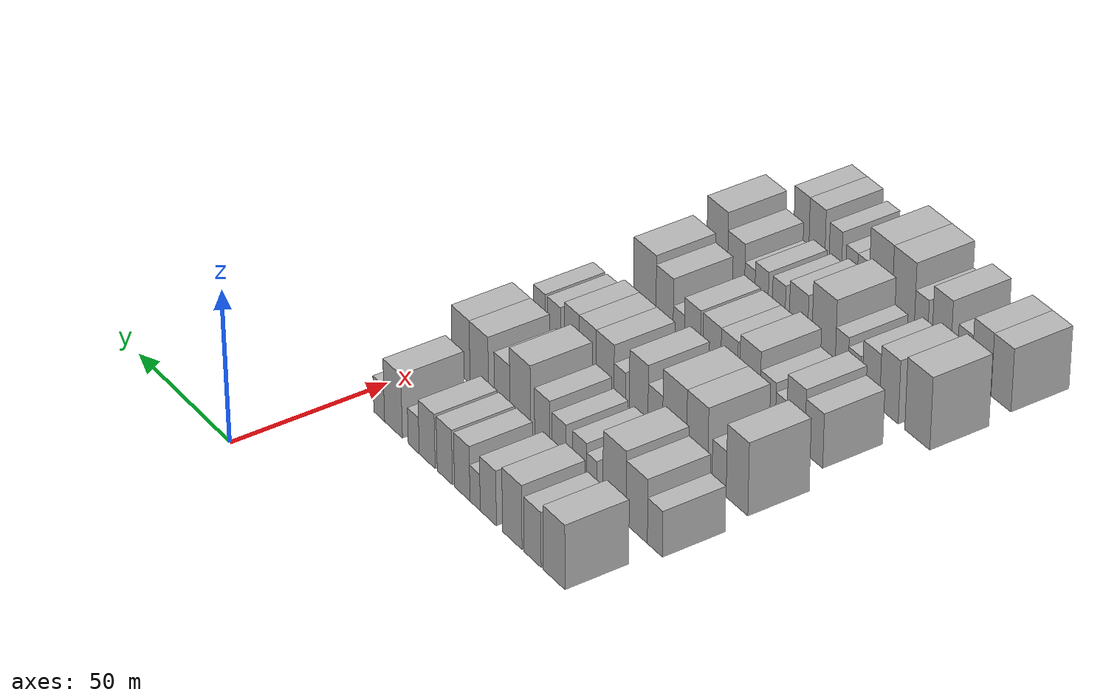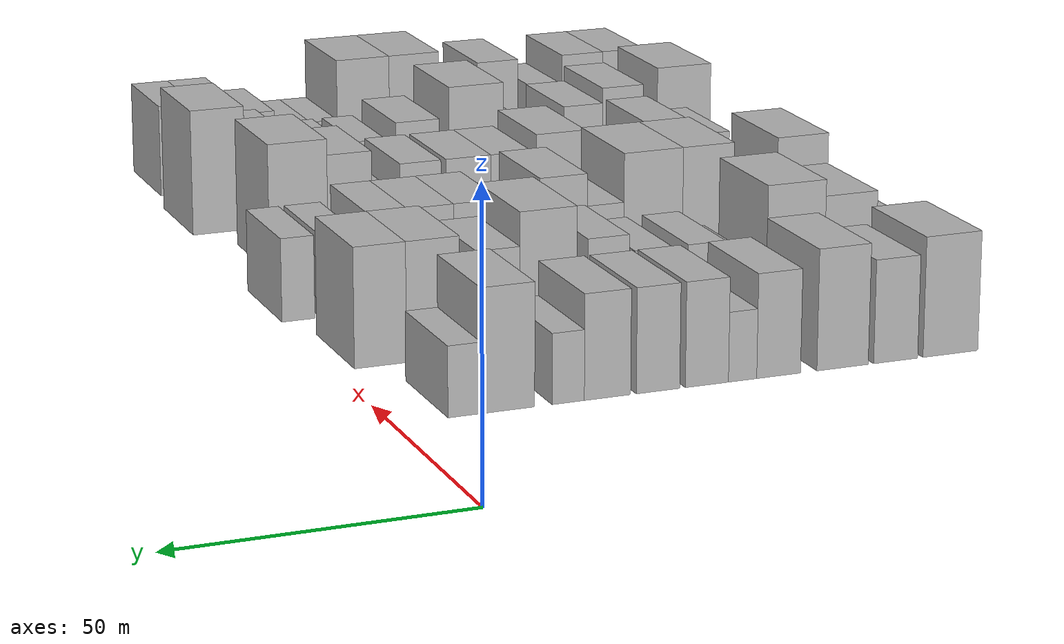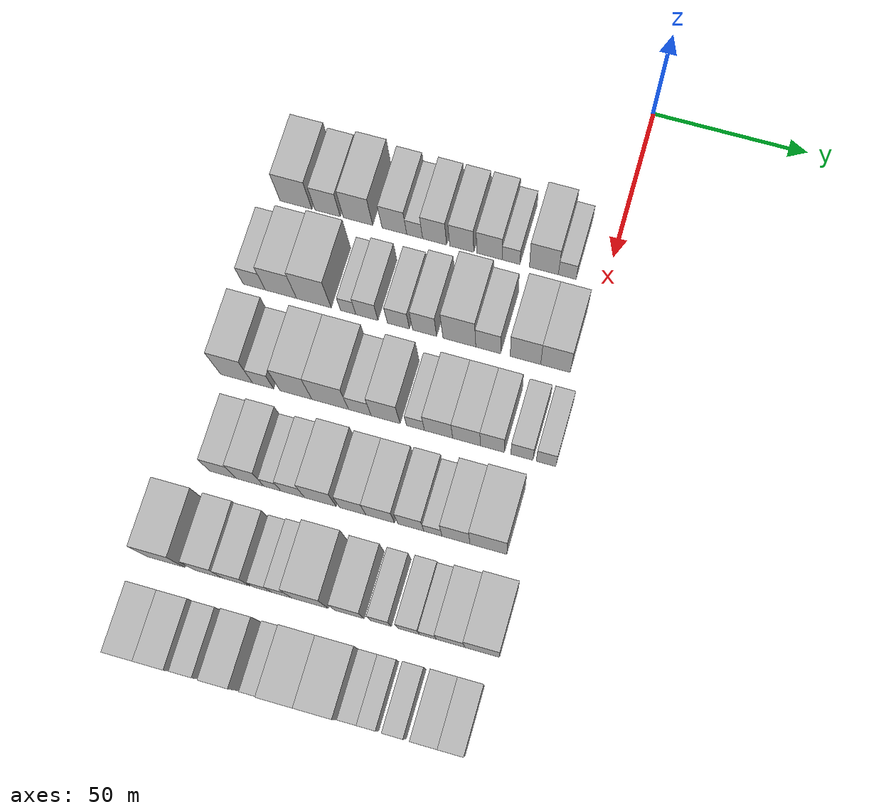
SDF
<sdf version="1.6">
 <world name="default">
  <model name="building_47">
   <static>1</static>
   <pose>50.0000 -99.3227 0 0.000000 0.000000 0.000000</pose>
   <link name="link">
    <pose>0 0 10.50 0 0 0</pose>
    <collision name="collision"><geometry><box><size>20.0000 10.3692 21.0000</size></box></geometry></collision>
    <visual name="visual">
     <cast_shadows>0</cast_shadows>
     <geometry><box><size>20.0000 10.3692 21.0000</size></box></geometry>
     <material>
      <script>
       <uri>model://HANNAS_wall/materials/scripts</uri>
       <uri>model://HANNAS_wall/materials/textures</uri>
       <name>vrc/HANNAS_wall</name>
      </script>
     </material>
    </visual>
   </link>
  </model>
  <model name="building_48">
   <static>1</static>
   <pose>50.0000 -89.0212 0 0.000000 0.000000 0.000000</pose>
   <link name="link">
    <pose>0 0 9.00 0 0 0</pose>
    <collision name="collision"><geometry><box><size>20.0000 8.2338 18.0000</size></box></geometry></collision>
    <visual name="visual">
     <cast_shadows>0</cast_shadows>
     <geometry><box><size>20.0000 8.2338 18.0000</size></box></geometry>
     <material>
      <script>
       <uri>model://HANNAS_wall/materials/scripts</uri>
       <uri>model://HANNAS_wall/materials/textures</uri>
       <name>vrc/HANNAS_wall</name>
      </script>
     </material>
    </visual>
   </link>
  </model>
  <model name="building_49">
   <static>1</static>
   <pose>50.0000 -79.1517 0 0.000000 0.000000 0.000000</pose>
   <link name="link">
    <pose>0 0 10.50 0 0 0</pose>
    <collision name="collision"><geometry><box><size>20.0000 9.5053 21.0000</size></box></geometry></collision>
    <visual name="visual">
     <cast_shadows>0</cast_shadows>
     <geometry><box><size>20.0000 9.5053 21.0000</size></box></geometry>
     <material>
      <script>
       <uri>model://HANNAS_wall/materials/scripts</uri>
       <uri>model://HANNAS_wall/materials/textures</uri>
       <name>vrc/HANNAS_wall</name>
      </script>
     </material>
    </visual>
   </link>
  </model>
  <model name="building_50">
   <static>1</static>
   <pose>50.0000 -67.4101 0 0.000000 0.000000 0.000000</pose>
   <link name="link">
    <pose>0 0 9.00 0 0 0</pose>
    <collision name="collision"><geometry><box><size>20.0000 7.9779 18.0000</size></box></geometry></collision>
    <visual name="visual">
     <cast_shadows>0</cast_shadows>
     <geometry><box><size>20.0000 7.9779 18.0000</size></box></geometry>
     <material>
      <script>
       <uri>model://HANNAS_wall/materials/scripts</uri>
       <uri>model://HANNAS_wall/materials/textures</uri>
       <name>vrc/HANNAS_wall</name>
      </script>
     </material>
    </visual>
   </link>
  </model>
  <model name="building_51">
   <static>1</static>
   <pose>50.0000 -60.8665 0 0.000000 0.000000 0.000000</pose>
   <link name="link">
    <pose>0 0 6.00 0 0 0</pose>
    <collision name="collision"><geometry><box><size>20.0000 5.1093 12.0000</size></box></geometry></collision>
    <visual name="visual">
     <cast_shadows>0</cast_shadows>
     <geometry><box><size>20.0000 5.1093 12.0000</size></box></geometry>
     <material>
      <script>
       <uri>model://HANNAS_wall/materials/scripts</uri>
       <uri>model://HANNAS_wall/materials/textures</uri>
       <name>vrc/HANNAS_wall</name>
      </script>
     </material>
    </visual>
   </link>
  </model>
  <model name="building_52">
   <static>1</static>
   <pose>50.0000 -54.4443 0 0.000000 0.000000 0.000000</pose>
   <link name="link">
    <pose>0 0 9.00 0 0 0</pose>
    <collision name="collision"><geometry><box><size>20.0000 7.7352 18.0000</size></box></geometry></collision>
    <visual name="visual">
     <cast_shadows>0</cast_shadows>
     <geometry><box><size>20.0000 7.7352 18.0000</size></box></geometry>
     <material>
      <script>
       <uri>model://HANNAS_wall/materials/scripts</uri>
       <uri>model://HANNAS_wall/materials/textures</uri>
       <name>vrc/HANNAS_wall</name>
      </script>
     </material>
    </visual>
   </link>
  </model>
  <model name="building_53">
   <static>1</static>
   <pose>50.0000 -45.7203 0 0.000000 0.000000 0.000000</pose>
   <link name="link">
    <pose>0 0 9.00 0 0 0</pose>
    <collision name="collision"><geometry><box><size>20.0000 7.7129 18.0000</size></box></geometry></collision>
    <visual name="visual">
     <cast_shadows>0</cast_shadows>
     <geometry><box><size>20.0000 7.7129 18.0000</size></box></geometry>
     <material>
      <script>
       <uri>model://HANNAS_wall/materials/scripts</uri>
       <uri>model://HANNAS_wall/materials/textures</uri>
       <name>vrc/HANNAS_wall</name>
      </script>
     </material>
    </visual>
   </link>
  </model>
  <model name="building_54">
   <static>1</static>
   <pose>50.0000 -36.8041 0 0.000000 0.000000 0.000000</pose>
   <link name="link">
    <pose>0 0 9.00 0 0 0</pose>
    <collision name="collision"><geometry><box><size>20.0000 8.1194 18.0000</size></box></geometry></collision>
    <visual name="visual">
     <cast_shadows>0</cast_shadows>
     <geometry><box><size>20.0000 8.1194 18.0000</size></box></geometry>
     <material>
      <script>
       <uri>model://HANNAS_wall/materials/scripts</uri>
       <uri>model://HANNAS_wall/materials/textures</uri>
       <name>vrc/HANNAS_wall</name>
      </script>
     </material>
    </visual>
   </link>
  </model>
  <model name="building_55">
   <static>1</static>
   <pose>50.0000 -29.9324 0 0.000000 0.000000 0.000000</pose>
   <link name="link">
    <pose>0 0 6.00 0 0 0</pose>
    <collision name="collision"><geometry><box><size>20.0000 5.6239 12.0000</size></box></geometry></collision>
    <visual name="visual">
     <cast_shadows>0</cast_shadows>
     <geometry><box><size>20.0000 5.6239 12.0000</size></box></geometry>
     <material>
      <script>
       <uri>model://HANNAS_wall/materials/scripts</uri>
       <uri>model://HANNAS_wall/materials/textures</uri>
       <name>vrc/HANNAS_wall</name>
      </script>
     </material>
    </visual>
   </link>
  </model>
  <model name="building_56">
   <static>1</static>
   <pose>50.0000 -19.5153 0 0.000000 0.000000 0.000000</pose>
   <link name="link">
    <pose>0 0 10.50 0 0 0</pose>
    <collision name="collision"><geometry><box><size>20.0000 9.2102 21.0000</size></box></geometry></collision>
    <visual name="visual">
     <cast_shadows>0</cast_shadows>
     <geometry><box><size>20.0000 9.2102 21.0000</size></box></geometry>
     <material>
      <script>
       <uri>model://HANNAS_wall/materials/scripts</uri>
       <uri>model://HANNAS_wall/materials/textures</uri>
       <name>vrc/HANNAS_wall</name>
      </script>
     </material>
    </visual>
   </link>
  </model>
  <model name="building_57">
   <static>1</static>
   <pose>50.0000 -12.0946 0 0.000000 0.000000 0.000000</pose>
   <link name="link">
    <pose>0 0 6.00 0 0 0</pose>
    <collision name="collision"><geometry><box><size>20.0000 5.6313 12.0000</size></box></geometry></collision>
    <visual name="visual">
     <cast_shadows>0</cast_shadows>
     <geometry><box><size>20.0000 5.6313 12.0000</size></box></geometry>
     <material>
      <script>
       <uri>model://HANNAS_wall/materials/scripts</uri>
       <uri>model://HANNAS_wall/materials/textures</uri>
       <name>vrc/HANNAS_wall</name>
      </script>
     </material>
    </visual>
   </link>
  </model>
  <model name="building_166">
   <static>1</static>
   <pose>79.0000 -103.4210 0 0.000000 0.000000 0.000000</pose>
   <link name="link">
    <pose>0 0 7.50 0 0 0</pose>
    <collision name="collision"><geometry><box><size>20.0000 7.1111 15.0000</size></box></geometry></collision>
    <visual name="visual">
     <cast_shadows>0</cast_shadows>
     <geometry><box><size>20.0000 7.1111 15.0000</size></box></geometry>
     <material>
      <script>
       <uri>model://HANNAS_wall/materials/scripts</uri>
       <uri>model://HANNAS_wall/materials/textures</uri>
       <name>vrc/HANNAS_wall</name>
      </script>
     </material>
    </visual>
   </link>
  </model>
  <model name="building_167">
   <static>1</static>
   <pose>79.0000 -94.8665 0 0.000000 0.000000 0.000000</pose>
   <link name="link">
    <pose>0 0 10.50 0 0 0</pose>
    <collision name="collision"><geometry><box><size>20.0000 9.9979 21.0000</size></box></geometry></collision>
    <visual name="visual">
     <cast_shadows>0</cast_shadows>
     <geometry><box><size>20.0000 9.9979 21.0000</size></box></geometry>
     <material>
      <script>
       <uri>model://HANNAS_wall/materials/scripts</uri>
       <uri>model://HANNAS_wall/materials/textures</uri>
       <name>vrc/HANNAS_wall</name>
      </script>
     </material>
    </visual>
   </link>
  </model>
  <model name="building_168">
   <static>1</static>
   <pose>79.0000 -84.3272 0 0.000000 0.000000 0.000000</pose>
   <link name="link">
    <pose>0 0 12.00 0 0 0</pose>
    <collision name="collision"><geometry><box><size>20.0000 11.0808 24.0000</size></box></geometry></collision>
    <visual name="visual">
     <cast_shadows>0</cast_shadows>
     <geometry><box><size>20.0000 11.0808 24.0000</size></box></geometry>
     <material>
      <script>
       <uri>model://HANNAS_wall/materials/scripts</uri>
       <uri>model://HANNAS_wall/materials/textures</uri>
       <name>vrc/HANNAS_wall</name>
      </script>
     </material>
    </visual>
   </link>
  </model>
  <model name="building_169">
   <static>1</static>
   <pose>79.0000 -73.3573 0 0.000000 0.000000 0.000000</pose>
   <link name="link">
    <pose>0 0 6.00 0 0 0</pose>
    <collision name="collision"><geometry><box><size>20.0000 4.8589 12.0000</size></box></geometry></collision>
    <visual name="visual">
     <cast_shadows>0</cast_shadows>
     <geometry><box><size>20.0000 4.8589 12.0000</size></box></geometry>
     <material>
      <script>
       <uri>model://HANNAS_wall/materials/scripts</uri>
       <uri>model://HANNAS_wall/materials/textures</uri>
       <name>vrc/HANNAS_wall</name>
      </script>
     </material>
    </visual>
   </link>
  </model>
  <model name="building_170">
   <static>1</static>
   <pose>79.0000 -67.4124 0 0.000000 0.000000 0.000000</pose>
   <link name="link">
    <pose>0 0 7.50 0 0 0</pose>
    <collision name="collision"><geometry><box><size>20.0000 7.0308 15.0000</size></box></geometry></collision>
    <visual name="visual">
     <cast_shadows>0</cast_shadows>
     <geometry><box><size>20.0000 7.0308 15.0000</size></box></geometry>
     <material>
      <script>
       <uri>model://HANNAS_wall/materials/scripts</uri>
       <uri>model://HANNAS_wall/materials/textures</uri>
       <name>vrc/HANNAS_wall</name>
      </script>
     </material>
    </visual>
   </link>
  </model>
  <model name="building_171">
   <static>1</static>
   <pose>79.0000 -57.4014 0 0.000000 0.000000 0.000000</pose>
   <link name="link">
    <pose>0 0 7.50 0 0 0</pose>
    <collision name="collision"><geometry><box><size>20.0000 6.9912 15.0000</size></box></geometry></collision>
    <visual name="visual">
     <cast_shadows>0</cast_shadows>
     <geometry><box><size>20.0000 6.9912 15.0000</size></box></geometry>
     <material>
      <script>
       <uri>model://HANNAS_wall/materials/scripts</uri>
       <uri>model://HANNAS_wall/materials/textures</uri>
       <name>vrc/HANNAS_wall</name>
      </script>
     </material>
    </visual>
   </link>
  </model>
  <model name="building_172">
   <static>1</static>
   <pose>79.0000 -49.1078 0 0.000000 0.000000 0.000000</pose>
   <link name="link">
    <pose>0 0 9.00 0 0 0</pose>
    <collision name="collision"><geometry><box><size>20.0000 7.5960 18.0000</size></box></geometry></collision>
    <visual name="visual">
     <cast_shadows>0</cast_shadows>
     <geometry><box><size>20.0000 7.5960 18.0000</size></box></geometry>
     <material>
      <script>
       <uri>model://HANNAS_wall/materials/scripts</uri>
       <uri>model://HANNAS_wall/materials/textures</uri>
       <name>vrc/HANNAS_wall</name>
      </script>
     </material>
    </visual>
   </link>
  </model>
  <model name="building_173">
   <static>1</static>
   <pose>79.0000 -38.1394 0 0.000000 0.000000 0.000000</pose>
   <link name="link">
    <pose>0 0 12.00 0 0 0</pose>
    <collision name="collision"><geometry><box><size>20.0000 10.3407 24.0000</size></box></geometry></collision>
    <visual name="visual">
     <cast_shadows>0</cast_shadows>
     <geometry><box><size>20.0000 10.3407 24.0000</size></box></geometry>
     <material>
      <script>
       <uri>model://HANNAS_wall/materials/scripts</uri>
       <uri>model://HANNAS_wall/materials/textures</uri>
       <name>vrc/HANNAS_wall</name>
      </script>
     </material>
    </visual>
   </link>
  </model>
  <model name="building_174">
   <static>1</static>
   <pose>79.0000 -29.0585 0 0.000000 0.000000 0.000000</pose>
   <link name="link">
    <pose>0 0 9.00 0 0 0</pose>
    <collision name="collision"><geometry><box><size>20.0000 7.8211 18.0000</size></box></geometry></collision>
    <visual name="visual">
     <cast_shadows>0</cast_shadows>
     <geometry><box><size>20.0000 7.8211 18.0000</size></box></geometry>
     <material>
      <script>
       <uri>model://HANNAS_wall/materials/scripts</uri>
       <uri>model://HANNAS_wall/materials/textures</uri>
       <name>vrc/HANNAS_wall</name>
      </script>
     </material>
    </visual>
   </link>
  </model>
  <model name="building_175">
   <static>1</static>
   <pose>79.0000 -17.3929 0 0.000000 0.000000 0.000000</pose>
   <link name="link">
    <pose>0 0 10.50 0 0 0</pose>
    <collision name="collision"><geometry><box><size>20.0000 9.5101 21.0000</size></box></geometry></collision>
    <visual name="visual">
     <cast_shadows>0</cast_shadows>
     <geometry><box><size>20.0000 9.5101 21.0000</size></box></geometry>
     <material>
      <script>
       <uri>model://HANNAS_wall/materials/scripts</uri>
       <uri>model://HANNAS_wall/materials/textures</uri>
       <name>vrc/HANNAS_wall</name>
      </script>
     </material>
    </visual>
   </link>
  </model>
  <model name="building_176">
   <static>1</static>
   <pose>79.0000 -8.0406 0 0.000000 0.000000 0.000000</pose>
   <link name="link">
    <pose>0 0 10.50 0 0 0</pose>
    <collision name="collision"><geometry><box><size>20.0000 9.1945 21.0000</size></box></geometry></collision>
    <visual name="visual">
     <cast_shadows>0</cast_shadows>
     <geometry><box><size>20.0000 9.1945 21.0000</size></box></geometry>
     <material>
      <script>
       <uri>model://HANNAS_wall/materials/scripts</uri>
       <uri>model://HANNAS_wall/materials/textures</uri>
       <name>vrc/HANNAS_wall</name>
      </script>
     </material>
    </visual>
   </link>
  </model>
  <model name="building_280">
   <static>1</static>
   <pose>108.0000 -99.5241 0 0.000000 0.000000 0.000000</pose>
   <link name="link">
    <pose>0 0 12.00 0 0 0</pose>
    <collision name="collision"><geometry><box><size>20.0000 10.1094 24.0000</size></box></geometry></collision>
    <visual name="visual">
     <cast_shadows>0</cast_shadows>
     <geometry><box><size>20.0000 10.1094 24.0000</size></box></geometry>
     <material>
      <script>
       <uri>model://HANNAS_wall/materials/scripts</uri>
       <uri>model://HANNAS_wall/materials/textures</uri>
       <name>vrc/HANNAS_wall</name>
      </script>
     </material>
    </visual>
   </link>
  </model>
  <model name="building_281">
   <static>1</static>
   <pose>108.0000 -91.1392 0 0.000000 0.000000 0.000000</pose>
   <link name="link">
    <pose>0 0 7.50 0 0 0</pose>
    <collision name="collision"><geometry><box><size>20.0000 6.6603 15.0000</size></box></geometry></collision>
    <visual name="visual">
     <cast_shadows>0</cast_shadows>
     <geometry><box><size>20.0000 6.6603 15.0000</size></box></geometry>
     <material>
      <script>
       <uri>model://HANNAS_wall/materials/scripts</uri>
       <uri>model://HANNAS_wall/materials/textures</uri>
       <name>vrc/HANNAS_wall</name>
      </script>
     </material>
    </visual>
   </link>
  </model>
  <model name="building_282">
   <static>1</static>
   <pose>108.0000 -80.7818 0 0.000000 0.000000 0.000000</pose>
   <link name="link">
    <pose>0 0 12.00 0 0 0</pose>
    <collision name="collision"><geometry><box><size>20.0000 10.0544 24.0000</size></box></geometry></collision>
    <visual name="visual">
     <cast_shadows>0</cast_shadows>
     <geometry><box><size>20.0000 10.0544 24.0000</size></box></geometry>
     <material>
      <script>
       <uri>model://HANNAS_wall/materials/scripts</uri>
       <uri>model://HANNAS_wall/materials/textures</uri>
       <name>vrc/HANNAS_wall</name>
      </script>
     </material>
    </visual>
   </link>
  </model>
  <model name="building_283">
   <static>1</static>
   <pose>108.0000 -70.0143 0 0.000000 0.000000 0.000000</pose>
   <link name="link">
    <pose>0 0 12.00 0 0 0</pose>
    <collision name="collision"><geometry><box><size>20.0000 11.4806 24.0000</size></box></geometry></collision>
    <visual name="visual">
     <cast_shadows>0</cast_shadows>
     <geometry><box><size>20.0000 11.4806 24.0000</size></box></geometry>
     <material>
      <script>
       <uri>model://HANNAS_wall/materials/scripts</uri>
       <uri>model://HANNAS_wall/materials/textures</uri>
       <name>vrc/HANNAS_wall</name>
      </script>
     </material>
    </visual>
   </link>
  </model>
  <model name="building_284">
   <static>1</static>
   <pose>108.0000 -60.7300 0 0.000000 0.000000 0.000000</pose>
   <link name="link">
    <pose>0 0 7.50 0 0 0</pose>
    <collision name="collision"><geometry><box><size>20.0000 7.0880 15.0000</size></box></geometry></collision>
    <visual name="visual">
     <cast_shadows>0</cast_shadows>
     <geometry><box><size>20.0000 7.0880 15.0000</size></box></geometry>
     <material>
      <script>
       <uri>model://HANNAS_wall/materials/scripts</uri>
       <uri>model://HANNAS_wall/materials/textures</uri>
       <name>vrc/HANNAS_wall</name>
      </script>
     </material>
    </visual>
   </link>
  </model>
  <model name="building_285">
   <static>1</static>
   <pose>108.0000 -52.6762 0 0.000000 0.000000 0.000000</pose>
   <link name="link">
    <pose>0 0 10.50 0 0 0</pose>
    <collision name="collision"><geometry><box><size>20.0000 9.0196 21.0000</size></box></geometry></collision>
    <visual name="visual">
     <cast_shadows>0</cast_shadows>
     <geometry><box><size>20.0000 9.0196 21.0000</size></box></geometry>
     <material>
      <script>
       <uri>model://HANNAS_wall/materials/scripts</uri>
       <uri>model://HANNAS_wall/materials/textures</uri>
       <name>vrc/HANNAS_wall</name>
      </script>
     </material>
    </visual>
   </link>
  </model>
  <model name="building_286">
   <static>1</static>
   <pose>108.0000 -43.3907 0 0.000000 0.000000 0.000000</pose>
   <link name="link">
    <pose>0 0 6.00 0 0 0</pose>
    <collision name="collision"><geometry><box><size>20.0000 5.5515 12.0000</size></box></geometry></collision>
    <visual name="visual">
     <cast_shadows>0</cast_shadows>
     <geometry><box><size>20.0000 5.5515 12.0000</size></box></geometry>
     <material>
      <script>
       <uri>model://HANNAS_wall/materials/scripts</uri>
       <uri>model://HANNAS_wall/materials/textures</uri>
       <name>vrc/HANNAS_wall</name>
      </script>
     </material>
    </visual>
   </link>
  </model>
  <model name="building_287">
   <static>1</static>
   <pose>108.0000 -36.2427 0 0.000000 0.000000 0.000000</pose>
   <link name="link">
    <pose>0 0 9.00 0 0 0</pose>
    <collision name="collision"><geometry><box><size>20.0000 8.7445 18.0000</size></box></geometry></collision>
    <visual name="visual">
     <cast_shadows>0</cast_shadows>
     <geometry><box><size>20.0000 8.7445 18.0000</size></box></geometry>
     <material>
      <script>
       <uri>model://HANNAS_wall/materials/scripts</uri>
       <uri>model://HANNAS_wall/materials/textures</uri>
       <name>vrc/HANNAS_wall</name>
      </script>
     </material>
    </visual>
   </link>
  </model>
  <model name="building_288">
   <static>1</static>
   <pose>108.0000 -27.5734 0 0.000000 0.000000 0.000000</pose>
   <link name="link">
    <pose>0 0 9.00 0 0 0</pose>
    <collision name="collision"><geometry><box><size>20.0000 8.5943 18.0000</size></box></geometry></collision>
    <visual name="visual">
     <cast_shadows>0</cast_shadows>
     <geometry><box><size>20.0000 8.5943 18.0000</size></box></geometry>
     <material>
      <script>
       <uri>model://HANNAS_wall/materials/scripts</uri>
       <uri>model://HANNAS_wall/materials/textures</uri>
       <name>vrc/HANNAS_wall</name>
      </script>
     </material>
    </visual>
   </link>
  </model>
  <model name="building_289">
   <static>1</static>
   <pose>108.0000 -19.5694 0 0.000000 0.000000 0.000000</pose>
   <link name="link">
    <pose>0 0 9.00 0 0 0</pose>
    <collision name="collision"><geometry><box><size>20.0000 7.4137 18.0000</size></box></geometry></collision>
    <visual name="visual">
     <cast_shadows>0</cast_shadows>
     <geometry><box><size>20.0000 7.4137 18.0000</size></box></geometry>
     <material>
      <script>
       <uri>model://HANNAS_wall/materials/scripts</uri>
       <uri>model://HANNAS_wall/materials/textures</uri>
       <name>vrc/HANNAS_wall</name>
      </script>
     </material>
    </visual>
   </link>
  </model>
  <model name="building_290">
   <static>1</static>
   <pose>108.0000 -10.4849 0 0.000000 0.000000 0.000000</pose>
   <link name="link">
    <pose>0 0 7.50 0 0 0</pose>
    <collision name="collision"><geometry><box><size>20.0000 6.7554 15.0000</size></box></geometry></collision>
    <visual name="visual">
     <cast_shadows>0</cast_shadows>
     <geometry><box><size>20.0000 6.7554 15.0000</size></box></geometry>
     <material>
      <script>
       <uri>model://HANNAS_wall/materials/scripts</uri>
       <uri>model://HANNAS_wall/materials/textures</uri>
       <name>vrc/HANNAS_wall</name>
      </script>
     </material>
    </visual>
   </link>
  </model>
  <model name="building_291">
   <static>1</static>
   <pose>108.0000 -3.1051 0 0.000000 0.000000 0.000000</pose>
   <link name="link">
    <pose>0 0 7.50 0 0 0</pose>
    <collision name="collision"><geometry><box><size>20.0000 6.0041 15.0000</size></box></geometry></collision>
    <visual name="visual">
     <cast_shadows>0</cast_shadows>
     <geometry><box><size>20.0000 6.0041 15.0000</size></box></geometry>
     <material>
      <script>
       <uri>model://HANNAS_wall/materials/scripts</uri>
       <uri>model://HANNAS_wall/materials/textures</uri>
       <name>vrc/HANNAS_wall</name>
      </script>
     </material>
    </visual>
   </link>
  </model>
  <model name="building_385">
   <static>1</static>
   <pose>137.0000 -94.0505 0 0.000000 0.000000 0.000000</pose>
   <link name="link">
    <pose>0 0 9.00 0 0 0</pose>
    <collision name="collision"><geometry><box><size>20.0000 8.3299 18.0000</size></box></geometry></collision>
    <visual name="visual">
     <cast_shadows>0</cast_shadows>
     <geometry><box><size>20.0000 8.3299 18.0000</size></box></geometry>
     <material>
      <script>
       <uri>model://HANNAS_wall/materials/scripts</uri>
       <uri>model://HANNAS_wall/materials/textures</uri>
       <name>vrc/HANNAS_wall</name>
      </script>
     </material>
    </visual>
   </link>
  </model>
  <model name="building_386">
   <static>1</static>
   <pose>137.0000 -85.6207 0 0.000000 0.000000 0.000000</pose>
   <link name="link">
    <pose>0 0 10.50 0 0 0</pose>
    <collision name="collision"><geometry><box><size>20.0000 8.5295 21.0000</size></box></geometry></collision>
    <visual name="visual">
     <cast_shadows>0</cast_shadows>
     <geometry><box><size>20.0000 8.5295 21.0000</size></box></geometry>
     <material>
      <script>
       <uri>model://HANNAS_wall/materials/scripts</uri>
       <uri>model://HANNAS_wall/materials/textures</uri>
       <name>vrc/HANNAS_wall</name>
      </script>
     </material>
    </visual>
   </link>
  </model>
  <model name="building_387">
   <static>1</static>
   <pose>137.0000 -78.7461 0 0.000000 0.000000 0.000000</pose>
   <link name="link">
    <pose>0 0 6.00 0 0 0</pose>
    <collision name="collision"><geometry><box><size>20.0000 5.2198 12.0000</size></box></geometry></collision>
    <visual name="visual">
     <cast_shadows>0</cast_shadows>
     <geometry><box><size>20.0000 5.2198 12.0000</size></box></geometry>
     <material>
      <script>
       <uri>model://HANNAS_wall/materials/scripts</uri>
       <uri>model://HANNAS_wall/materials/textures</uri>
       <name>vrc/HANNAS_wall</name>
      </script>
     </material>
    </visual>
   </link>
  </model>
  <model name="building_388">
   <static>1</static>
   <pose>137.0000 -72.4797 0 0.000000 0.000000 0.000000</pose>
   <link name="link">
    <pose>0 0 7.50 0 0 0</pose>
    <collision name="collision"><geometry><box><size>20.0000 7.3129 15.0000</size></box></geometry></collision>
    <visual name="visual">
     <cast_shadows>0</cast_shadows>
     <geometry><box><size>20.0000 7.3129 15.0000</size></box></geometry>
     <material>
      <script>
       <uri>model://HANNAS_wall/materials/scripts</uri>
       <uri>model://HANNAS_wall/materials/textures</uri>
       <name>vrc/HANNAS_wall</name>
      </script>
     </material>
    </visual>
   </link>
  </model>
  <model name="building_389">
   <static>1</static>
   <pose>137.0000 -63.9257 0 0.000000 0.000000 0.000000</pose>
   <link name="link">
    <pose>0 0 10.50 0 0 0</pose>
    <collision name="collision"><geometry><box><size>20.0000 9.7951 21.0000</size></box></geometry></collision>
    <visual name="visual">
     <cast_shadows>0</cast_shadows>
     <geometry><box><size>20.0000 9.7951 21.0000</size></box></geometry>
     <material>
      <script>
       <uri>model://HANNAS_wall/materials/scripts</uri>
       <uri>model://HANNAS_wall/materials/textures</uri>
       <name>vrc/HANNAS_wall</name>
      </script>
     </material>
    </visual>
   </link>
  </model>
  <model name="building_390">
   <static>1</static>
   <pose>137.0000 -54.0075 0 0.000000 0.000000 0.000000</pose>
   <link name="link">
    <pose>0 0 9.00 0 0 0</pose>
    <collision name="collision"><geometry><box><size>20.0000 8.0414 18.0000</size></box></geometry></collision>
    <visual name="visual">
     <cast_shadows>0</cast_shadows>
     <geometry><box><size>20.0000 8.0414 18.0000</size></box></geometry>
     <material>
      <script>
       <uri>model://HANNAS_wall/materials/scripts</uri>
       <uri>model://HANNAS_wall/materials/textures</uri>
       <name>vrc/HANNAS_wall</name>
      </script>
     </material>
    </visual>
   </link>
  </model>
  <model name="building_391">
   <static>1</static>
   <pose>137.0000 -45.5736 0 0.000000 0.000000 0.000000</pose>
   <link name="link">
    <pose>0 0 9.00 0 0 0</pose>
    <collision name="collision"><geometry><box><size>20.0000 8.8263 18.0000</size></box></geometry></collision>
    <visual name="visual">
     <cast_shadows>0</cast_shadows>
     <geometry><box><size>20.0000 8.8263 18.0000</size></box></geometry>
     <material>
      <script>
       <uri>model://HANNAS_wall/materials/scripts</uri>
       <uri>model://HANNAS_wall/materials/textures</uri>
       <name>vrc/HANNAS_wall</name>
      </script>
     </material>
    </visual>
   </link>
  </model>
  <model name="building_392">
   <static>1</static>
   <pose>137.0000 -36.1922 0 0.000000 0.000000 0.000000</pose>
   <link name="link">
    <pose>0 0 9.00 0 0 0</pose>
    <collision name="collision"><geometry><box><size>20.0000 7.9364 18.0000</size></box></geometry></collision>
    <visual name="visual">
     <cast_shadows>0</cast_shadows>
     <geometry><box><size>20.0000 7.9364 18.0000</size></box></geometry>
     <material>
      <script>
       <uri>model://HANNAS_wall/materials/scripts</uri>
       <uri>model://HANNAS_wall/materials/textures</uri>
       <name>vrc/HANNAS_wall</name>
      </script>
     </material>
    </visual>
   </link>
  </model>
  <model name="building_393">
   <static>1</static>
   <pose>137.0000 -29.4677 0 0.000000 0.000000 0.000000</pose>
   <link name="link">
    <pose>0 0 6.00 0 0 0</pose>
    <collision name="collision"><geometry><box><size>20.0000 5.5125 12.0000</size></box></geometry></collision>
    <visual name="visual">
     <cast_shadows>0</cast_shadows>
     <geometry><box><size>20.0000 5.5125 12.0000</size></box></geometry>
     <material>
      <script>
       <uri>model://HANNAS_wall/materials/scripts</uri>
       <uri>model://HANNAS_wall/materials/textures</uri>
       <name>vrc/HANNAS_wall</name>
      </script>
     </material>
    </visual>
   </link>
  </model>
  <model name="building_394">
   <static>1</static>
   <pose>137.0000 -22.4636 0 0.000000 0.000000 0.000000</pose>
   <link name="link">
    <pose>0 0 10.50 0 0 0</pose>
    <collision name="collision"><geometry><box><size>20.0000 8.4958 21.0000</size></box></geometry></collision>
    <visual name="visual">
     <cast_shadows>0</cast_shadows>
     <geometry><box><size>20.0000 8.4958 21.0000</size></box></geometry>
     <material>
      <script>
       <uri>model://HANNAS_wall/materials/scripts</uri>
       <uri>model://HANNAS_wall/materials/textures</uri>
       <name>vrc/HANNAS_wall</name>
      </script>
     </material>
    </visual>
   </link>
  </model>
  <model name="building_395">
   <static>1</static>
   <pose>137.0000 -12.6333 0 0.000000 0.000000 0.000000</pose>
   <link name="link">
    <pose>0 0 12.00 0 0 0</pose>
    <collision name="collision"><geometry><box><size>20.0000 11.1649 24.0000</size></box></geometry></collision>
    <visual name="visual">
     <cast_shadows>0</cast_shadows>
     <geometry><box><size>20.0000 11.1649 24.0000</size></box></geometry>
     <material>
      <script>
       <uri>model://HANNAS_wall/materials/scripts</uri>
       <uri>model://HANNAS_wall/materials/textures</uri>
       <name>vrc/HANNAS_wall</name>
      </script>
     </material>
    </visual>
   </link>
  </model>
  <model name="building_498">
   <static>1</static>
   <pose>166.0000 -101.7461 0 0.000000 0.000000 0.000000</pose>
   <link name="link">
    <pose>0 0 12.00 0 0 0</pose>
    <collision name="collision"><geometry><box><size>20.0000 11.4074 24.0000</size></box></geometry></collision>
    <visual name="visual">
     <cast_shadows>0</cast_shadows>
     <geometry><box><size>20.0000 11.4074 24.0000</size></box></geometry>
     <material>
      <script>
       <uri>model://HANNAS_wall/materials/scripts</uri>
       <uri>model://HANNAS_wall/materials/textures</uri>
       <name>vrc/HANNAS_wall</name>
      </script>
     </material>
    </visual>
   </link>
  </model>
  <model name="building_499">
   <static>1</static>
   <pose>166.0000 -88.7219 0 0.000000 0.000000 0.000000</pose>
   <link name="link">
    <pose>0 0 10.50 0 0 0</pose>
    <collision name="collision"><geometry><box><size>20.0000 8.6411 21.0000</size></box></geometry></collision>
    <visual name="visual">
     <cast_shadows>0</cast_shadows>
     <geometry><box><size>20.0000 8.6411 21.0000</size></box></geometry>
     <material>
      <script>
       <uri>model://HANNAS_wall/materials/scripts</uri>
       <uri>model://HANNAS_wall/materials/textures</uri>
       <name>vrc/HANNAS_wall</name>
      </script>
     </material>
    </visual>
   </link>
  </model>
  <model name="building_500">
   <static>1</static>
   <pose>166.0000 -80.3127 0 0.000000 0.000000 0.000000</pose>
   <link name="link">
    <pose>0 0 9.00 0 0 0</pose>
    <collision name="collision"><geometry><box><size>20.0000 8.1773 18.0000</size></box></geometry></collision>
    <visual name="visual">
     <cast_shadows>0</cast_shadows>
     <geometry><box><size>20.0000 8.1773 18.0000</size></box></geometry>
     <material>
      <script>
       <uri>model://HANNAS_wall/materials/scripts</uri>
       <uri>model://HANNAS_wall/materials/textures</uri>
       <name>vrc/HANNAS_wall</name>
      </script>
     </material>
    </visual>
   </link>
  </model>
  <model name="building_501">
   <static>1</static>
   <pose>166.0000 -72.4157 0 0.000000 0.000000 0.000000</pose>
   <link name="link">
    <pose>0 0 6.00 0 0 0</pose>
    <collision name="collision"><geometry><box><size>20.0000 5.6166 12.0000</size></box></geometry></collision>
    <visual name="visual">
     <cast_shadows>0</cast_shadows>
     <geometry><box><size>20.0000 5.6166 12.0000</size></box></geometry>
     <material>
      <script>
       <uri>model://HANNAS_wall/materials/scripts</uri>
       <uri>model://HANNAS_wall/materials/textures</uri>
       <name>vrc/HANNAS_wall</name>
      </script>
     </material>
    </visual>
   </link>
  </model>
  <model name="building_502">
   <static>1</static>
   <pose>166.0000 -66.5987 0 0.000000 0.000000 0.000000</pose>
   <link name="link">
    <pose>0 0 7.50 0 0 0</pose>
    <collision name="collision"><geometry><box><size>20.0000 6.0174 15.0000</size></box></geometry></collision>
    <visual name="visual">
     <cast_shadows>0</cast_shadows>
     <geometry><box><size>20.0000 6.0174 15.0000</size></box></geometry>
     <material>
      <script>
       <uri>model://HANNAS_wall/materials/scripts</uri>
       <uri>model://HANNAS_wall/materials/textures</uri>
       <name>vrc/HANNAS_wall</name>
      </script>
     </material>
    </visual>
   </link>
  </model>
  <model name="building_503">
   <static>1</static>
   <pose>166.0000 -58.0297 0 0.000000 0.000000 0.000000</pose>
   <link name="link">
    <pose>0 0 12.00 0 0 0</pose>
    <collision name="collision"><geometry><box><size>20.0000 11.1207 24.0000</size></box></geometry></collision>
    <visual name="visual">
     <cast_shadows>0</cast_shadows>
     <geometry><box><size>20.0000 11.1207 24.0000</size></box></geometry>
     <material>
      <script>
       <uri>model://HANNAS_wall/materials/scripts</uri>
       <uri>model://HANNAS_wall/materials/textures</uri>
       <name>vrc/HANNAS_wall</name>
      </script>
     </material>
    </visual>
   </link>
  </model>
  <model name="building_504">
   <static>1</static>
   <pose>166.0000 -46.0447 0 0.000000 0.000000 0.000000</pose>
   <link name="link">
    <pose>0 0 9.00 0 0 0</pose>
    <collision name="collision"><geometry><box><size>20.0000 8.8492 18.0000</size></box></geometry></collision>
    <visual name="visual">
     <cast_shadows>0</cast_shadows>
     <geometry><box><size>20.0000 8.8492 18.0000</size></box></geometry>
     <material>
      <script>
       <uri>model://HANNAS_wall/materials/scripts</uri>
       <uri>model://HANNAS_wall/materials/textures</uri>
       <name>vrc/HANNAS_wall</name>
      </script>
     </material>
    </visual>
   </link>
  </model>
  <model name="building_505">
   <static>1</static>
   <pose>166.0000 -36.5275 0 0.000000 0.000000 0.000000</pose>
   <link name="link">
    <pose>0 0 7.50 0 0 0</pose>
    <collision name="collision"><geometry><box><size>20.0000 6.1852 15.0000</size></box></geometry></collision>
    <visual name="visual">
     <cast_shadows>0</cast_shadows>
     <geometry><box><size>20.0000 6.1852 15.0000</size></box></geometry>
     <material>
      <script>
       <uri>model://HANNAS_wall/materials/scripts</uri>
       <uri>model://HANNAS_wall/materials/textures</uri>
       <name>vrc/HANNAS_wall</name>
      </script>
     </material>
    </visual>
   </link>
  </model>
  <model name="building_506">
   <static>1</static>
   <pose>166.0000 -28.1937 0 0.000000 0.000000 0.000000</pose>
   <link name="link">
    <pose>0 0 7.50 0 0 0</pose>
    <collision name="collision"><geometry><box><size>20.0000 6.4823 15.0000</size></box></geometry></collision>
    <visual name="visual">
     <cast_shadows>0</cast_shadows>
     <geometry><box><size>20.0000 6.4823 15.0000</size></box></geometry>
     <material>
      <script>
       <uri>model://HANNAS_wall/materials/scripts</uri>
       <uri>model://HANNAS_wall/materials/textures</uri>
       <name>vrc/HANNAS_wall</name>
      </script>
     </material>
    </visual>
   </link>
  </model>
  <model name="building_507">
   <static>1</static>
   <pose>166.0000 -22.4233 0 0.000000 0.000000 0.000000</pose>
   <link name="link">
    <pose>0 0 6.00 0 0 0</pose>
    <collision name="collision"><geometry><box><size>20.0000 5.0584 12.0000</size></box></geometry></collision>
    <visual name="visual">
     <cast_shadows>0</cast_shadows>
     <geometry><box><size>20.0000 5.0584 12.0000</size></box></geometry>
     <material>
      <script>
       <uri>model://HANNAS_wall/materials/scripts</uri>
       <uri>model://HANNAS_wall/materials/textures</uri>
       <name>vrc/HANNAS_wall</name>
      </script>
     </material>
    </visual>
   </link>
  </model>
  <model name="building_508">
   <static>1</static>
   <pose>166.0000 -15.6876 0 0.000000 0.000000 0.000000</pose>
   <link name="link">
    <pose>0 0 9.00 0 0 0</pose>
    <collision name="collision"><geometry><box><size>20.0000 8.4130 18.0000</size></box></geometry></collision>
    <visual name="visual">
     <cast_shadows>0</cast_shadows>
     <geometry><box><size>20.0000 8.4130 18.0000</size></box></geometry>
     <material>
      <script>
       <uri>model://HANNAS_wall/materials/scripts</uri>
       <uri>model://HANNAS_wall/materials/textures</uri>
       <name>vrc/HANNAS_wall</name>
      </script>
     </material>
    </visual>
   </link>
  </model>
  <model name="building_509">
   <static>1</static>
   <pose>166.0000 -6.2914 0 0.000000 0.000000 0.000000</pose>
   <link name="link">
    <pose>0 0 12.00 0 0 0</pose>
    <collision name="collision"><geometry><box><size>20.0000 10.3795 24.0000</size></box></geometry></collision>
    <visual name="visual">
     <cast_shadows>0</cast_shadows>
     <geometry><box><size>20.0000 10.3795 24.0000</size></box></geometry>
     <material>
      <script>
       <uri>model://HANNAS_wall/materials/scripts</uri>
       <uri>model://HANNAS_wall/materials/textures</uri>
       <name>vrc/HANNAS_wall</name>
      </script>
     </material>
    </visual>
   </link>
  </model>
  <model name="building_615">
   <static>1</static>
   <pose>195.0000 -101.0500 0 0.000000 0.000000 0.000000</pose>
   <link name="link">
    <pose>0 0 10.50 0 0 0</pose>
    <collision name="collision"><geometry><box><size>20.0000 8.9696 21.0000</size></box></geometry></collision>
    <visual name="visual">
     <cast_shadows>0</cast_shadows>
     <geometry><box><size>20.0000 8.9696 21.0000</size></box></geometry>
     <material>
      <script>
       <uri>model://HANNAS_wall/materials/scripts</uri>
       <uri>model://HANNAS_wall/materials/textures</uri>
       <name>vrc/HANNAS_wall</name>
      </script>
     </material>
    </visual>
   </link>
  </model>
  <model name="building_616">
   <static>1</static>
   <pose>195.0000 -92.1058 0 0.000000 0.000000 0.000000</pose>
   <link name="link">
    <pose>0 0 10.50 0 0 0</pose>
    <collision name="collision"><geometry><box><size>20.0000 8.9187 21.0000</size></box></geometry></collision>
    <visual name="visual">
     <cast_shadows>0</cast_shadows>
     <geometry><box><size>20.0000 8.9187 21.0000</size></box></geometry>
     <material>
      <script>
       <uri>model://HANNAS_wall/materials/scripts</uri>
       <uri>model://HANNAS_wall/materials/textures</uri>
       <name>vrc/HANNAS_wall</name>
      </script>
     </material>
    </visual>
   </link>
  </model>
  <model name="building_617">
   <static>1</static>
   <pose>195.0000 -84.3139 0 0.000000 0.000000 0.000000</pose>
   <link name="link">
    <pose>0 0 7.50 0 0 0</pose>
    <collision name="collision"><geometry><box><size>20.0000 6.6652 15.0000</size></box></geometry></collision>
    <visual name="visual">
     <cast_shadows>0</cast_shadows>
     <geometry><box><size>20.0000 6.6652 15.0000</size></box></geometry>
     <material>
      <script>
       <uri>model://HANNAS_wall/materials/scripts</uri>
       <uri>model://HANNAS_wall/materials/textures</uri>
       <name>vrc/HANNAS_wall</name>
      </script>
     </material>
    </visual>
   </link>
  </model>
  <model name="building_618">
   <static>1</static>
   <pose>195.0000 -73.6341 0 0.000000 0.000000 0.000000</pose>
   <link name="link">
    <pose>0 0 10.50 0 0 0</pose>
    <collision name="collision"><geometry><box><size>20.0000 8.6944 21.0000</size></box></geometry></collision>
    <visual name="visual">
     <cast_shadows>0</cast_shadows>
     <geometry><box><size>20.0000 8.6944 21.0000</size></box></geometry>
     <material>
      <script>
       <uri>model://HANNAS_wall/materials/scripts</uri>
       <uri>model://HANNAS_wall/materials/textures</uri>
       <name>vrc/HANNAS_wall</name>
      </script>
     </material>
    </visual>
   </link>
  </model>
  <model name="building_619">
   <static>1</static>
   <pose>195.0000 -64.1609 0 0.000000 0.000000 0.000000</pose>
   <link name="link">
    <pose>0 0 7.50 0 0 0</pose>
    <collision name="collision"><geometry><box><size>20.0000 6.2521 15.0000</size></box></geometry></collision>
    <visual name="visual">
     <cast_shadows>0</cast_shadows>
     <geometry><box><size>20.0000 6.2521 15.0000</size></box></geometry>
     <material>
      <script>
       <uri>model://HANNAS_wall/materials/scripts</uri>
       <uri>model://HANNAS_wall/materials/textures</uri>
       <name>vrc/HANNAS_wall</name>
      </script>
     </material>
    </visual>
   </link>
  </model>
  <model name="building_620">
   <static>1</static>
   <pose>195.0000 -55.7669 0 0.000000 0.000000 0.000000</pose>
   <link name="link">
    <pose>0 0 12.00 0 0 0</pose>
    <collision name="collision"><geometry><box><size>20.0000 10.5360 24.0000</size></box></geometry></collision>
    <visual name="visual">
     <cast_shadows>0</cast_shadows>
     <geometry><box><size>20.0000 10.5360 24.0000</size></box></geometry>
     <material>
      <script>
       <uri>model://HANNAS_wall/materials/scripts</uri>
       <uri>model://HANNAS_wall/materials/textures</uri>
       <name>vrc/HANNAS_wall</name>
      </script>
     </material>
    </visual>
   </link>
  </model>
  <model name="building_621">
   <static>1</static>
   <pose>195.0000 -45.0114 0 0.000000 0.000000 0.000000</pose>
   <link name="link">
    <pose>0 0 12.00 0 0 0</pose>
    <collision name="collision"><geometry><box><size>20.0000 10.9748 24.0000</size></box></geometry></collision>
    <visual name="visual">
     <cast_shadows>0</cast_shadows>
     <geometry><box><size>20.0000 10.9748 24.0000</size></box></geometry>
     <material>
      <script>
       <uri>model://HANNAS_wall/materials/scripts</uri>
       <uri>model://HANNAS_wall/materials/textures</uri>
       <name>vrc/HANNAS_wall</name>
      </script>
     </material>
    </visual>
   </link>
  </model>
  <model name="building_622">
   <static>1</static>
   <pose>195.0000 -36.7429 0 0.000000 0.000000 0.000000</pose>
   <link name="link">
    <pose>0 0 6.00 0 0 0</pose>
    <collision name="collision"><geometry><box><size>20.0000 5.5623 12.0000</size></box></geometry></collision>
    <visual name="visual">
     <cast_shadows>0</cast_shadows>
     <geometry><box><size>20.0000 5.5623 12.0000</size></box></geometry>
     <material>
      <script>
       <uri>model://HANNAS_wall/materials/scripts</uri>
       <uri>model://HANNAS_wall/materials/textures</uri>
       <name>vrc/HANNAS_wall</name>
      </script>
     </material>
    </visual>
   </link>
  </model>
  <model name="building_623">
   <static>1</static>
   <pose>195.0000 -31.2131 0 0.000000 0.000000 0.000000</pose>
   <link name="link">
    <pose>0 0 6.00 0 0 0</pose>
    <collision name="collision"><geometry><box><size>20.0000 5.4972 12.0000</size></box></geometry></collision>
    <visual name="visual">
     <cast_shadows>0</cast_shadows>
     <geometry><box><size>20.0000 5.4972 12.0000</size></box></geometry>
     <material>
      <script>
       <uri>model://HANNAS_wall/materials/scripts</uri>
       <uri>model://HANNAS_wall/materials/textures</uri>
       <name>vrc/HANNAS_wall</name>
      </script>
     </material>
    </visual>
   </link>
  </model>
  <model name="building_624">
   <static>1</static>
   <pose>195.0000 -23.4081 0 0.000000 0.000000 0.000000</pose>
   <link name="link">
    <pose>0 0 7.50 0 0 0</pose>
    <collision name="collision"><geometry><box><size>20.0000 6.1128 15.0000</size></box></geometry></collision>
    <visual name="visual">
     <cast_shadows>0</cast_shadows>
     <geometry><box><size>20.0000 6.1128 15.0000</size></box></geometry>
     <material>
      <script>
       <uri>model://HANNAS_wall/materials/scripts</uri>
       <uri>model://HANNAS_wall/materials/textures</uri>
       <name>vrc/HANNAS_wall</name>
      </script>
     </material>
    </visual>
   </link>
  </model>
  <model name="building_625">
   <static>1</static>
   <pose>195.0000 -14.4399 0 0.000000 0.000000 0.000000</pose>
   <link name="link">
    <pose>0 0 9.00 0 0 0</pose>
    <collision name="collision"><geometry><box><size>20.0000 7.8237 18.0000</size></box></geometry></collision>
    <visual name="visual">
     <cast_shadows>0</cast_shadows>
     <geometry><box><size>20.0000 7.8237 18.0000</size></box></geometry>
     <material>
      <script>
       <uri>model://HANNAS_wall/materials/scripts</uri>
       <uri>model://HANNAS_wall/materials/textures</uri>
       <name>vrc/HANNAS_wall</name>
      </script>
     </material>
    </visual>
   </link>
  </model>
  <model name="building_626">
   <static>1</static>
   <pose>195.0000 -6.7999 0 0.000000 0.000000 0.000000</pose>
   <link name="link">
    <pose>0 0 9.00 0 0 0</pose>
    <collision name="collision"><geometry><box><size>20.0000 7.4562 18.0000</size></box></geometry></collision>
    <visual name="visual">
     <cast_shadows>0</cast_shadows>
     <geometry><box><size>20.0000 7.4562 18.0000</size></box></geometry>
     <material>
      <script>
       <uri>model://HANNAS_wall/materials/scripts</uri>
       <uri>model://HANNAS_wall/materials/textures</uri>
       <name>vrc/HANNAS_wall</name>
      </script>
     </material>
    </visual>
   </link>
  </model>
 </world>
</sdf>
